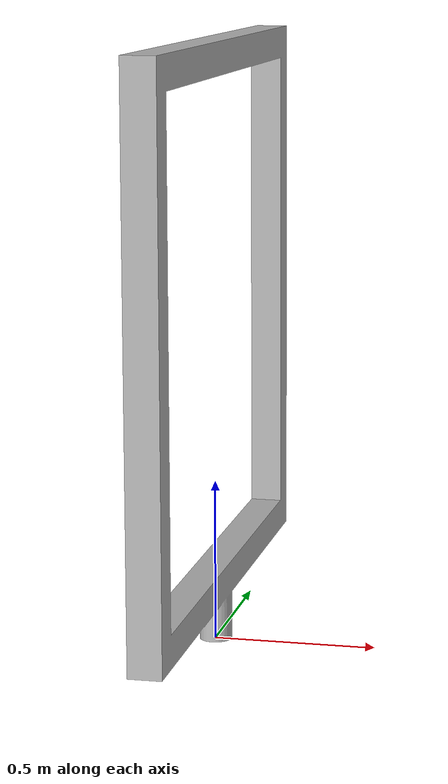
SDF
<?xml version="1.0"?>
<sdf version="1.5">
    <model name="frame_1">
        <static>true</static>
        <link name="link">
            <collision name="collision1">
                <pose>0 0 0 0 0 0</pose>
                <geometry>
                    <mesh>
                        <uri>model://frame_1/meshes/frame_1.stl</uri>
                    </mesh>
                </geometry>
            </collision>
            <visual name="visual1">

              <pose>0 0 0 0 0 0</pose>
              <geometry>
              <mesh>
                 <uri>model://frame_1/meshes/frame_1.dae</uri>
              </mesh>
              </geometry>
             </visual>
        </link>
    </model>
</sdf>
